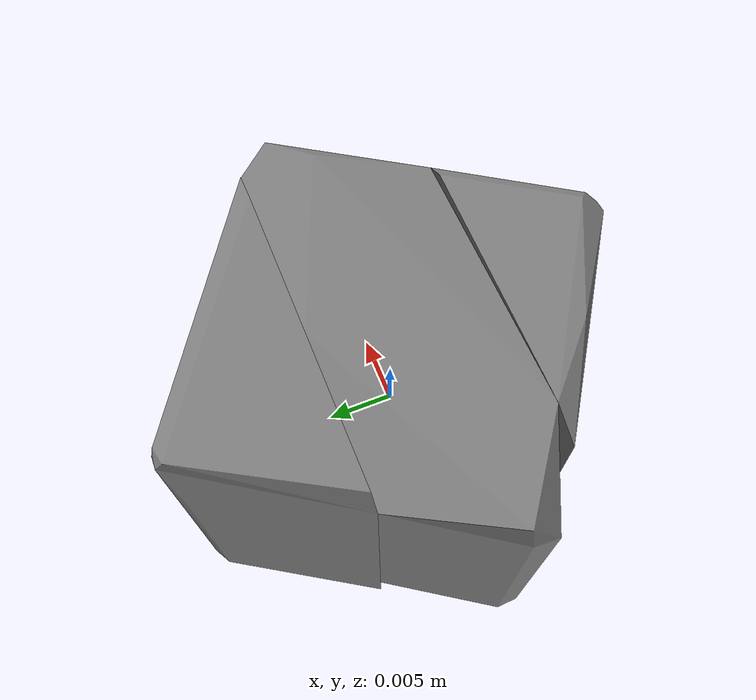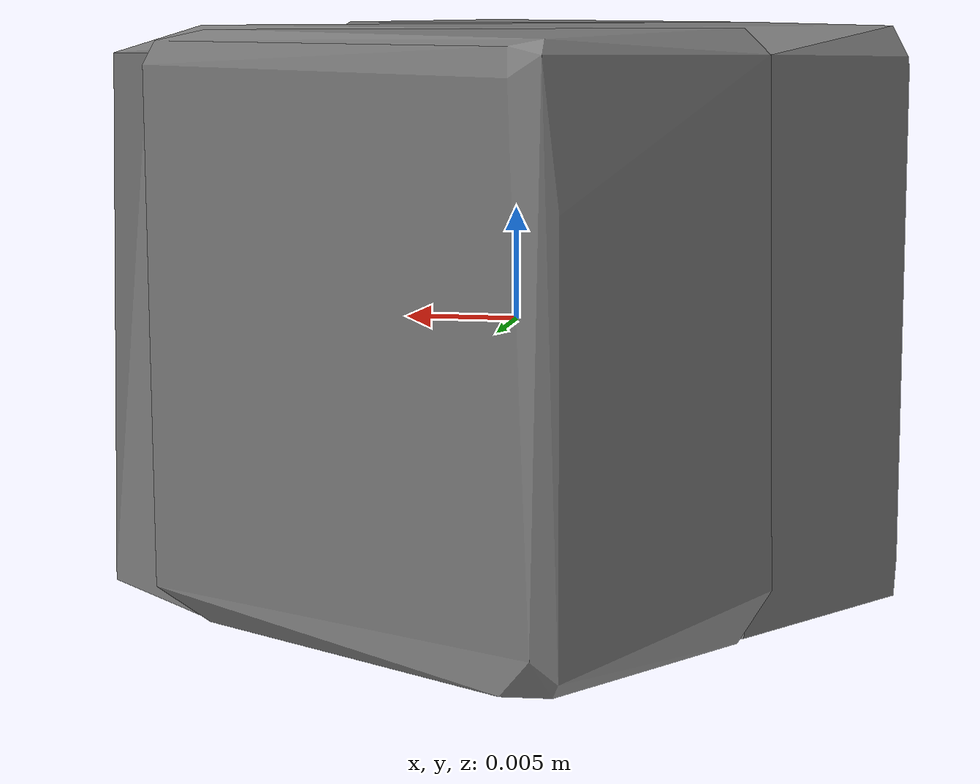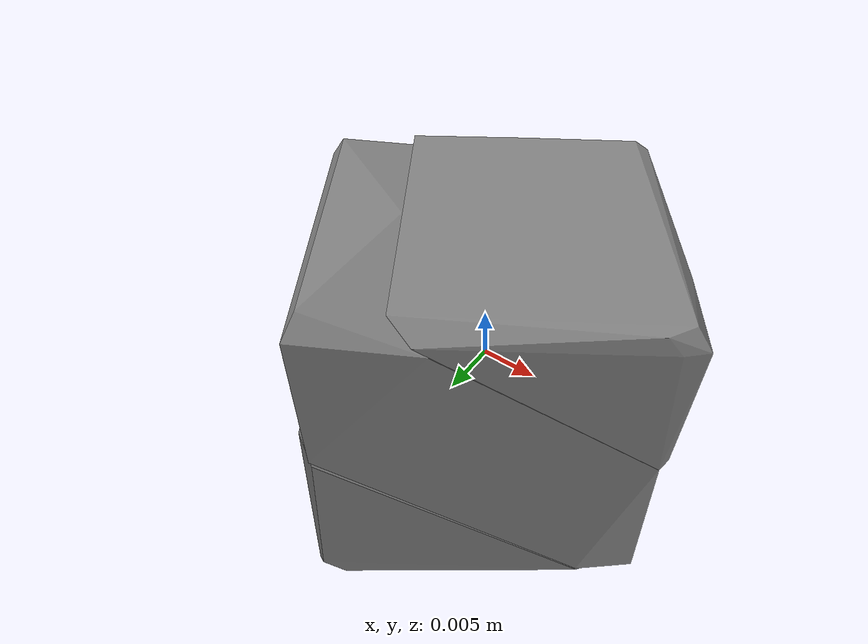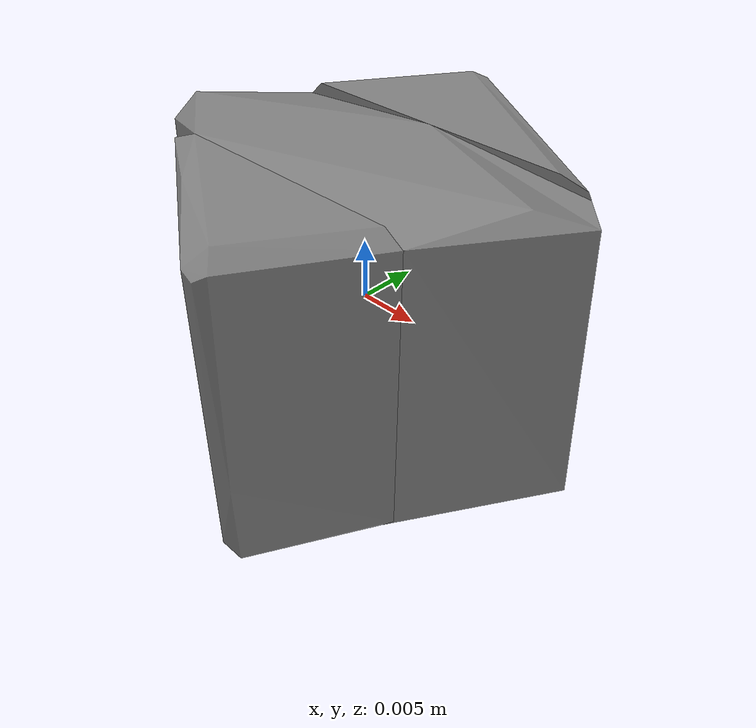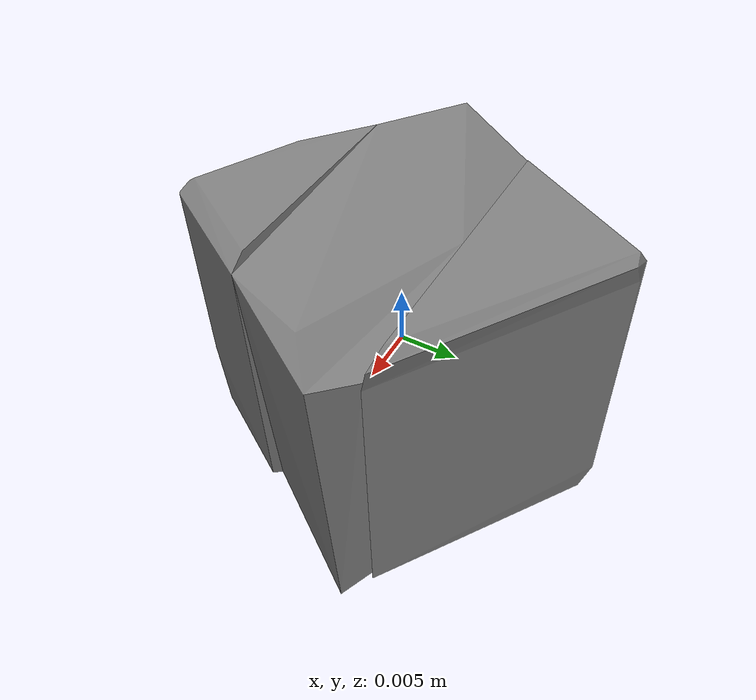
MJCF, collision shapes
<mujoco model="b_colored_wood_blocks">
  <compiler angle="radian" />

  <asset>
    <mesh name="b_colored_wood_blocks_visual_mesh" file="b_colored_wood_blocks/textured.obj" />
    <mesh name="b_colored_wood_blocks_collision_mesh_0" file="b_colored_wood_blocks/textured_coacd_0.stl" />
    <mesh name="b_colored_wood_blocks_collision_mesh_1" file="b_colored_wood_blocks/textured_coacd_1.stl" />
    <mesh name="b_colored_wood_blocks_collision_mesh_2" file="b_colored_wood_blocks/textured_coacd_2.stl" />
    <texture name="b_colored_wood_blocks_texture" type="2d" file="b_colored_wood_blocks/texture_map.png" />
    <material name="b_colored_wood_blocks_material" texture="b_colored_wood_blocks_texture" />
  </asset>

  <worldbody>
    <body name="b_colored_wood_blocks" pos="0 0 0" euler="0 0 0">
      <freejoint name="b_colored_wood_blocks_joint" />
      <geom name="b_colored_wood_blocks_visual_geom" type="mesh" mesh="b_colored_wood_blocks_visual_mesh" material="b_colored_wood_blocks_material" pos="0.018821263920805856 0.008818559894969996 -0.012633433800824467" euler="0 0 0" contype="0" conaffinity="0" group="0" />
      <geom name="b_colored_wood_blocks_collision_geom_0" type="mesh" mesh="b_colored_wood_blocks_collision_mesh_0" pos="0.018821263920805856 0.008818559894969996 -0.012633433800824467" euler="0 0 0" contype="1" conaffinity="1" group="3" />
      <geom name="b_colored_wood_blocks_collision_geom_1" type="mesh" mesh="b_colored_wood_blocks_collision_mesh_1" pos="0.018821263920805856 0.008818559894969996 -0.012633433800824467" euler="0 0 0" contype="1" conaffinity="1" group="3" />
      <geom name="b_colored_wood_blocks_collision_geom_2" type="mesh" mesh="b_colored_wood_blocks_collision_mesh_2" pos="0.018821263920805856 0.008818559894969996 -0.012633433800824467" euler="0 0 0" contype="1" conaffinity="1" group="3" />
      <inertial pos="0 0 0" euler="0 0 0" mass="0.0108" diaginertia="0.001 0.001 0.001" />
    </body>
  </worldbody>
</mujoco>
